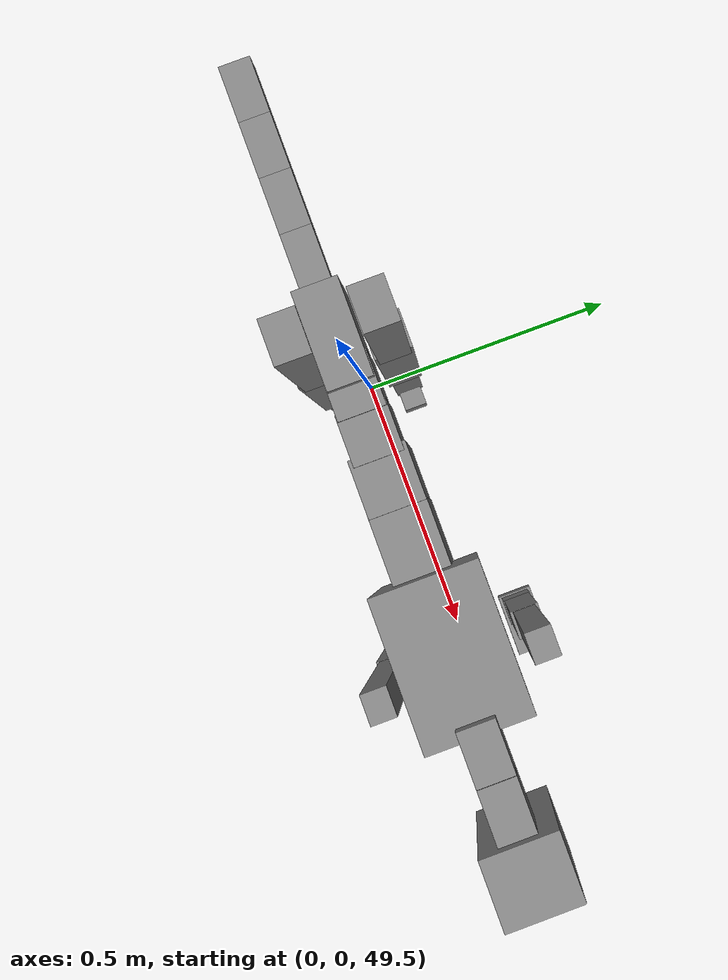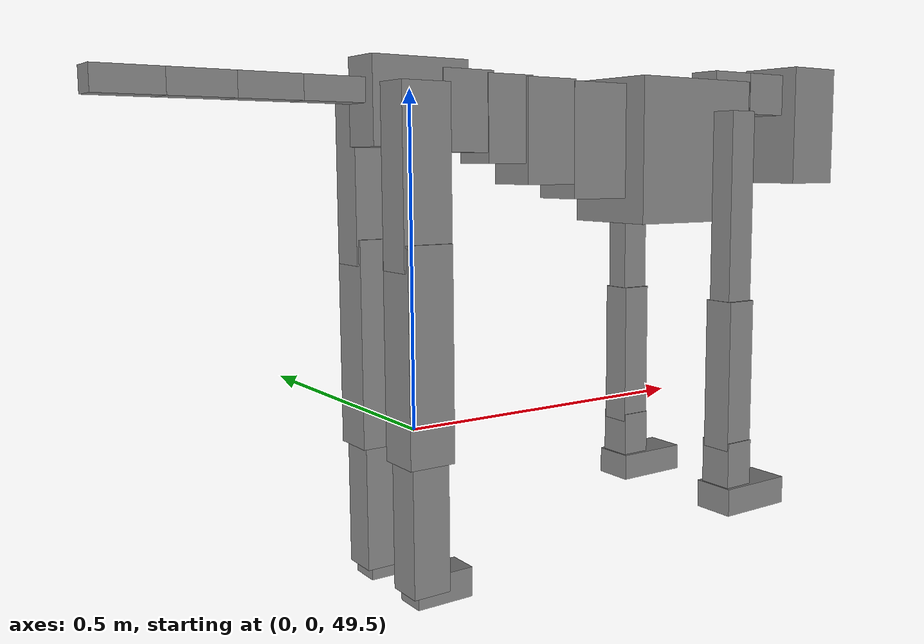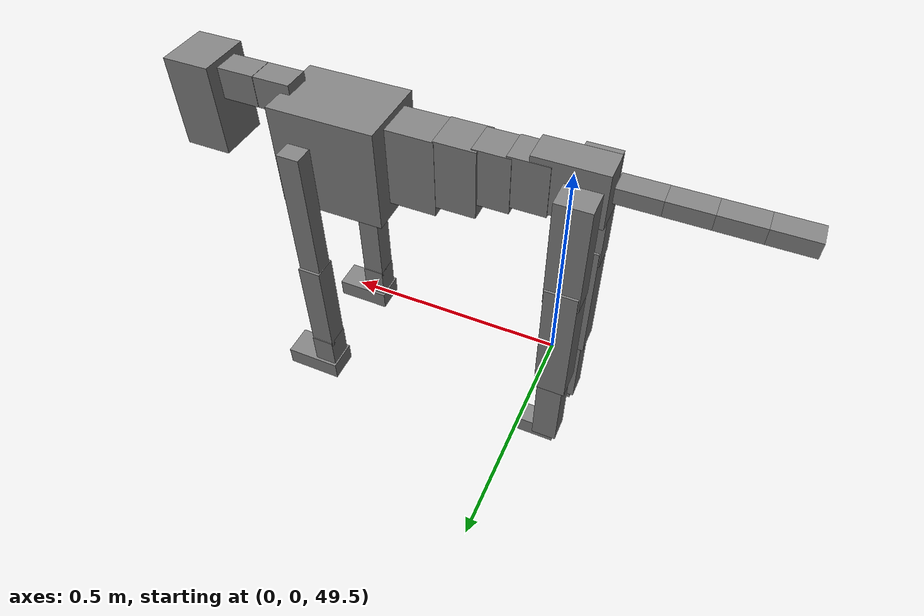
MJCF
<mujoco model="dog">

    <default>
        <joint armature="0.02" stiffness="1" damping="0.2" limited="true"/>
        <geom condim="3" friction="1 0.05 0.05" margin="0.01"/>
        <motor ctrllimited="true" ctrlrange="-1.0 1.0" forcelimited="true" gear="50"/>
    </default>

    <compiler inertiafromgeom="true" angle="radian"/>

    <option timestep="0.016" iterations="50" tolerance="1e-10" solver="Newton" jacobian="dense" cone="pyramidal"/>

    <size nconmax="20000" njmax="60000" nstack="5000000"/>
    <visual>
        <map force="0.1" zfar="30"/>
        <rgba haze="0.15 0.25 0.35 1"/>
        <quality shadowsize="2048"/>
        <global offwidth="800" offheight="800"/>
    </visual>

    <asset>
        <texture type="skybox" builtin="gradient" rgb1="0.3 0.5 0.7" rgb2="0 0 0" width="512" height="512"/>
        <texture name="texplane" type="2d" builtin="checker" rgb1=".2 .3 .4" rgb2=".1 0.15 0.2" width="512" height="512"
                 mark="cross" markrgb=".8 .8 .8"/>
        <texture name="texgeom" type="cube" builtin="flat" mark="cross" width="127" height="1278" rgb1="0.8 0.6 0.4"
                 rgb2="0.8 0.6 0.4" markrgb="1 1 1" random="0.01"/>

        <material name="matplane" reflectance="0.3" texture="texplane" texrepeat="1 1" texuniform="true"/>
        <material name="matgeom" texture="texgeom" texuniform="true" rgba="0.8 0.6 .4 1"/>
    </asset>

    <worldbody>
        <geom name="floor" pos="0 0 0" size="0 0 .25" type="plane" material="matplane" condim="3"/>

        <light directional="false" diffuse=".2 .2 .2" specular="0 0 0" pos="0 0 5" dir="0 0 -1" castshadow="false"/>
        <light mode="targetbodycom" target="torso" directional="false" diffuse=".8 .8 .8" specular="0.3 0.3 0.3"
               pos="0 0 4.0" dir="0 0 -1"/>

        <body name="root" pos="0 0 50">
            <freejoint name="root_1"/>
            <geom type="box" pos="0 0 -0.02" size="0.0774  0.0358  0.063" density="2030"/>

            <body name="spine1" pos="0.054 0 0">
                <joint name="spine1_y" axis="0 1 0" range="0 0.7" limited="true"/>
                <geom type="box" pos="0.02375 0 -0.03" size="0.04375  0.0375  0.05985" density="2030"/>

                <body name="spine2" pos="0.0612 0 0">
                    <joint name="spine2_y" axis="0 1 0" range="-0.15 0.15" limited="true"/>
                    <geom type="box" pos="0.03555  0  -0.04" size="0.04055  0.039  0.06615" density="2030"/>

                    <body name="spine3" pos="0.0730 0 0">
                        <joint name="spine3_y" axis="0 1 0" range="-0.15 0.15" limited="true"/>
                        <geom type="box" pos="0.03555  0  -0.057" size="0.04555  0.0445  0.081" density="2030"/>

                        <body name="spine4" pos="0.0780 0 0">
                            <joint name="spine4_y" axis="0 1 0" range="-0.15 0.15" limited="true"/>
                            <geom type="box" pos="0.05265  0  -0.07" size="0.05265  0.045  0.09135" density="2030"/>

                            <body name="torso" pos="0.1082 0 0">
                                <joint name="torso_y" axis="0 1 0" range="-0.15 0.15" limited="true"/>
                                <geom type="box" pos="0.11925  0  -0.085" size="0.11925  0.085  0.11745"
                                      density="2030"/>

                                <body name="neck1" pos="0.2160  0   0.0180">
                                    <joint name="neck1_y" axis="0 1 0" range="-1.2  -1" limited="true"/>
                                    <geom type="box" pos="0.0423  0  0" size="0.0423  0.03  0.036" density="2325"/>

                                    <body name="neck2" pos="0.0853  0  0">
                                        <joint name="neck2_y" axis="0 1 0" range="0.1  0" limited="true"/>
                                        <geom type="box" pos="0.0423  0  0" size="0.0423  0.03  0.036" density="2325"/>

                                        <body name="head" pos="0.0853  0  0">
                                            <joint name="head_y" axis="0 1 0" range="-0.3  -0.2" limited="true"/>
                                            <geom type="box" pos="0.0531  0  -0.055" size="0.0531  0.06  0.1044"
                                                  density="4030"/>

                                        </body>
                                    </body>
                                </body>

                                <body name="front_shoulder" pos="0.156  0   -0.0480">
                                    <joint name="front_shoulder_y" axis="0 1 0" range="-1 1.5" limited="true"/>
                                    <geom type="box" pos="0 0.13 -0.1416" size="0.0249  0.0213  0.1682" density="1158"/>
                                    <geom type="box" pos="0 -0.13 -0.1416" size="0.0249  0.0213  0.1682"
                                          density="1158"/>

                                    <body name="front_elbow" pos="0  0  -0.2831">
                                        <joint name="front_elbow_y" axis="0 1 0" range="-2 0" limited="true"/>
                                        <geom type="box" pos="0 0.13 -0.1248" size="0.0263  0.0269  0.1248"
                                              density="1081"/>
                                        <geom type="box" pos="0 -0.13 -0.1248" size="0.0263  0.0269  0.1248"
                                              density="1081"/>

                                        <body name="front_wrist" pos="0  0  -0.2495">
                                            <joint name="front_wrist_y" axis="0 1 0" range="-0.2 0" limited="true"/>
                                            <geom type="box" pos="0 0.13 -0.0388" size="0.0263  0.0292  0.0519"
                                                  density="1664"/>
                                            <geom type="box" pos="0 -0.13 -0.0388" size="0.0263  0.0292  0.0519"
                                                  density="1664"/>

                                            <body name="front_finger_end" pos="0  0  -0.0775">
                                                <joint name="front_finger_y" axis="0 1 0" range="-0.4 1"
                                                       limited="true"/>
                                                <geom type="box" pos="0.0359  0.13  -0.0078"
                                                      size="0.0658  0.0359  0.0228" density="1515"/>
                                                <geom type="box" pos="0.0359  -0.13  -0.0078"
                                                      size="0.0658  0.0359  0.0228" density="1515"/>

                                            </body>

                                        </body>
                                    </body>
                                </body>

                            </body>
                        </body>
                    </body>
                </body>
            </body>

            <body name="back_hip" pos="-0.03 0 -0.018">
                <joint name="back_hip_y" axis="0 1 0" range="-1.5 0.3" limited="true"/>
                <geom type="box" pos="0 0.07 -0.1069" size="0.0382  0.0300  0.1297" density="1154"/>
                <geom type="box" pos="0 -0.07 -0.1069" size="0.0382  0.0300  0.1297" density="1154"/>

                <body name="back_knee" pos="0  0  -0.2138">
                    <joint name="back_knee_y" axis="0 1 0" range="0 2.8" limited="true"/>
                    <geom type="box" pos="0 0.07 -0.1406" size="0.0357  0.0352  0.1562" density="1227"/>
                    <geom type="box" pos="0 -0.07 -0.1406" size="0.0357  0.0352  0.1562" density="1227"/>

                    <body name="back_ankle" pos="0  0  -0.2812">
                        <joint name="back_ankle_y" axis="0 1 0" range="-2.2 0" limited="true"/>
                        <geom type="box" pos="0 0.07 -0.0970" size="0.0293  0.0293  0.1082" density="1284"/>
                        <geom type="box" pos="0 -0.07 -0.0970" size="0.0293  0.0293  0.1082" density="1284"/>

                        <body name="back_toe_end" pos="0  0  -0.1940">
                            <joint name="back_toe_y" axis="0 1 0" range="-0.4 1" limited="true"/>
                            <geom type="box" pos="0.0247  0.07  -0.0073" size="0.0453  0.0247  0.0223" density="1515"/>
                            <geom type="box" pos="0.0247  -0.07  -0.0073" size="0.0453  0.0247  0.0223" density="1515"/>

                        </body>
                    </body>
                </body>
            </body>

            <body name="tail1" pos="-0.074 0 -0.006">
                <joint name="tail1_y" axis="0 1 0" range="-0.2 0.2" limited="true"/>
                <geom type="box" pos="-0.0536  0  0" size="0.045  0.025  0.0175" density="1587"/>

                <body name="tail2" pos="-0.09 0 0">
                    <joint name="tail2_y" axis="0 1 0" range="-0.2 0.2" limited="true"/>
                    <geom type="box" pos="-0.0536  0  0" size="0.045  0.025  0.0175" density="1587"/>

                    <body name="tail3" pos="-0.09 0 0">
                        <joint name="tail3_y" axis="0 1 0" range="-0.2 0.2" limited="true"/>
                        <geom type="box" pos="-0.0536  0  0" size="0.045  0.025  0.0175" density="1587"/>

                        <body name="tail4" pos="-0.09 0 0">
                            <joint name="tail4_y" axis="0 1 0" range="-0.2 0.2" limited="true"/>
                            <geom type="box" pos="-0.0536  0  0" size="0.045  0.025  0.0175" density="1587"/>

                        </body>
                    </body>
                </body>
            </body>
        </body>
    </worldbody>

    <actuator>
        <motor joint="spine1_y" forcerange="-150 150     "/>
        <motor joint="spine2_y" forcerange="-150 150     "/>
        <motor joint="spine3_y" forcerange="-150 150     "/>
        <motor joint="spine4_y" forcerange="-150 150     "/>
        <motor joint="torso_y" forcerange="-150 150     "/>
        <motor joint="neck1_y" forcerange="-100 100       "/>
        <motor joint="neck2_y" forcerange="-100 100       "/>
        <motor joint="head_y" forcerange="-150 150       "/>
        <motor joint="front_shoulder_y" forcerange="-111.67 130.33"/>
        <motor joint="front_elbow_y" forcerange="-176.51 119.08"/>
        <motor joint="front_wrist_y" forcerange="-131.43 101.99"/>
        <motor joint="front_finger_y" forcerange="-59.93 91.63"/>
        <motor joint="back_hip_y" forcerange="-312.24 287.57"/>
        <motor joint="back_knee_y" forcerange="-326.35 386.05"/>
        <motor joint="back_angle_y" forcerange="-183.26 184.98"/>
        <motor joint="back_toe_y" forcerange="-68.39 49.13"/>
        <motor joint="tail1_y" forcerange="-50 50     "/>
        <motor joint="tail2_y" forcerange="-50 50     "/>
        <motor joint="tail3_y" forcerange="-50 50     "/>
        <motor joint="tail4_y" forcerange="-50 50     "/>
    </actuator>
</mujoco>
